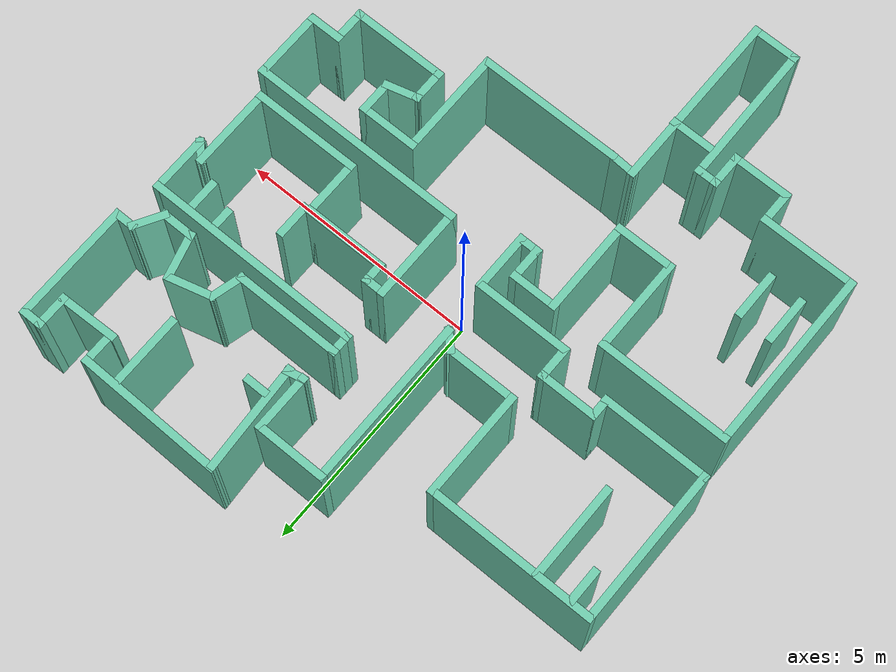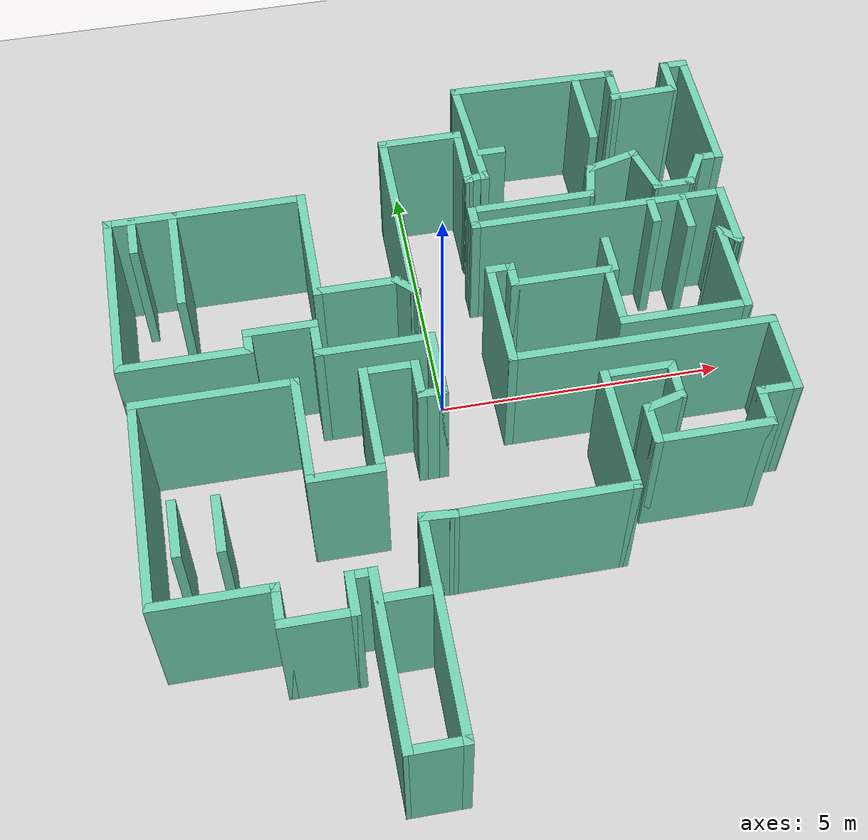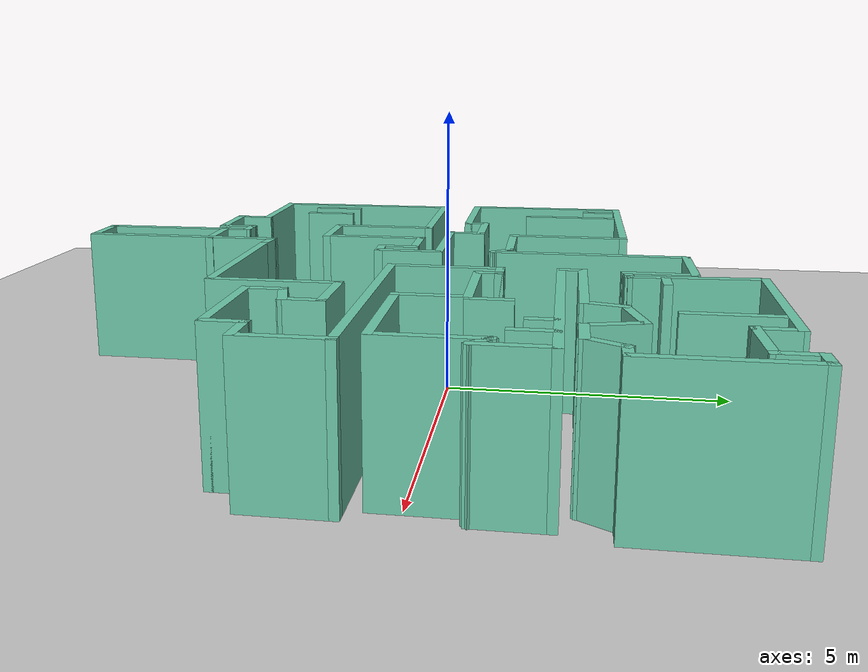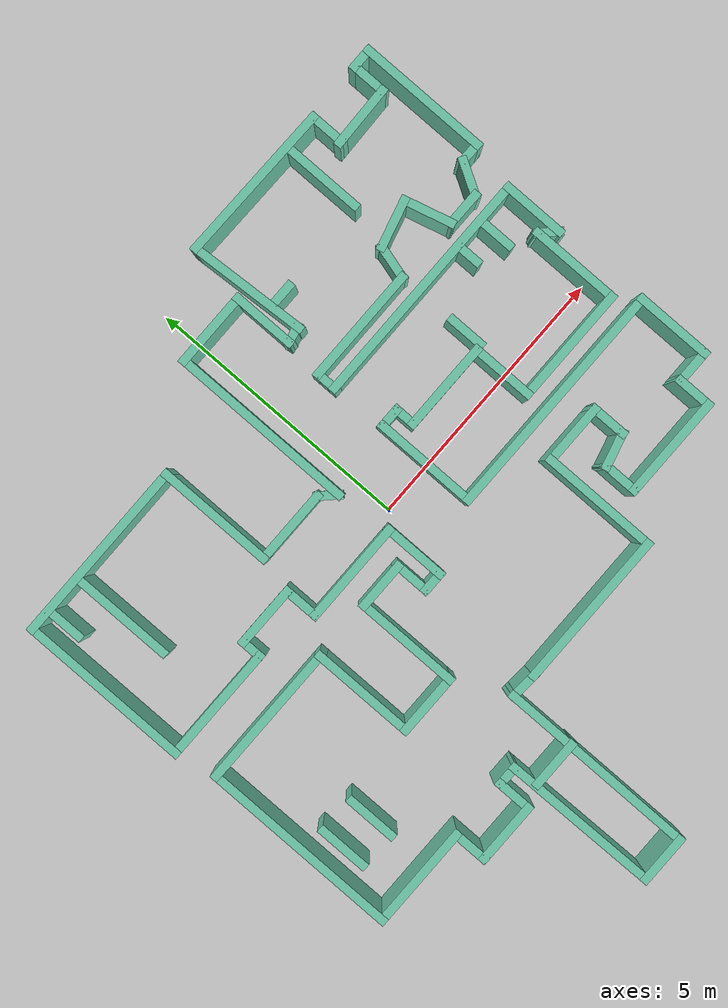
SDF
<sdf version="1.6">
 <world name="default">
  <light name="sun" type="directional">
   <pose>0 0 10 0 -0 0</pose>
   <diffuse>0.8 0.8 0.8 1</diffuse>
   <specular>0.2 0.2 0.2 1</specular>
   <attenuation>
    <range>1000</range>
    <constant>0.9</constant>
    <linear>0.01</linear>
    <quadratic>0.001</quadratic>
   </attenuation>
   <direction>-0.5 0.1 -0.9</direction>
  </light>
  <model name="ground_plane">
   <static>1</static>
   <link name="link">
    <collision name="collision">
     <geometry><plane><normal>0 0 1</normal><size>100 100</size></plane></geometry>
     <surface>
      <contact><collide_bitmask>65535</collide_bitmask></contact>
      <friction><ode><mu>100</mu><mu2>50</mu2></ode></friction>
     </surface>
    </collision>
    <visual name="visual">
     <cast_shadows>0</cast_shadows>
     <geometry><plane><normal>0 0 1</normal><size>100 100</size></plane></geometry>
     <material>
      <script><uri>file://media/materials/scripts/gazebo.material</uri><name>Gazebo/Grey</name></script>
     </material>
    </visual>
   </link>
  </model>
  <gravity>0 0 -9.8</gravity>
  <magnetic_field>6e-06 2.3e-05 -4.2e-05</magnetic_field>
  <atmosphere type="adiabatic"/>
  <physics name="default_physics" default="0" type="ode">
   <max_step_size>0.001</max_step_size>
   <real_time_factor>1</real_time_factor>
   <real_time_update_rate>1000</real_time_update_rate>
  </physics>
  <scene><ambient>0.4 0.4 0.4 1</ambient><background>0.7 0.7 0.7 1</background><shadows>1</shadows></scene>
  <audio><device>default</device></audio>
  <spherical_coordinates>
   <surface_model>EARTH_WGS84</surface_model>
   <latitude_deg>0</latitude_deg>
   <longitude_deg>0</longitude_deg>
   <elevation>0</elevation>
   <heading_deg>0</heading_deg>
  </spherical_coordinates>
  <model name="map_24">
   <pose>0.098786 -0.951485 0 0 -0 0</pose>
   <link name="Wall_10">
    <collision name="Wall_10_Collision">
     <geometry><box><size>2.25 0.15 2.5</size></box></geometry>
     <pose>0 0 1.25 0 -0 0</pose>
    </collision>
    <visual name="Wall_10_Visual">
     <pose>0 0 1.25 0 -0 0</pose>
     <geometry><box><size>2.25 0.15 2.5</size></box></geometry>
     <material>
      <script><uri>file://media/materials/scripts/gazebo.material</uri><name>Gazebo/Grey</name></script>
      <ambient>0.435294 0.796078 0.67451 1</ambient>
     </material>
     <meta><layer>0</layer></meta>
    </visual>
    <pose>-2.03213 3.05263 0 0 -0 1.5708</pose>
   </link>
   <link name="Wall_101">
    <collision name="Wall_101_Collision">
     <geometry><box><size>1 0.15 2.5</size></box></geometry>
     <pose>0 0 1.25 0 -0 0</pose>
    </collision>
    <visual name="Wall_101_Visual">
     <pose>0 0 1.25 0 -0 0</pose>
     <geometry><box><size>1 0.15 2.5</size></box></geometry>
     <material>
      <script><uri>file://media/materials/scripts/gazebo.material</uri><name>Gazebo/Grey</name></script>
      <ambient>0.435294 0.796078 0.67451 1</ambient>
     </material>
     <meta><layer>0</layer></meta>
    </visual>
    <pose>-4.0881 -2.12036 0 0 -0 -1.5708</pose>
   </link>
   <link name="Wall_104">
    <collision name="Wall_104_Collision">
     <geometry><box><size>1 0.15 2.5</size></box></geometry>
     <pose>0 0 1.25 0 -0 0</pose>
    </collision>
    <visual name="Wall_104_Visual">
     <pose>0 0 1.25 0 -0 0</pose>
     <geometry><box><size>1 0.15 2.5</size></box></geometry>
     <material>
      <script><uri>file://media/materials/scripts/gazebo.material</uri><name>Gazebo/Grey</name></script>
      <ambient>0.435294 0.796078 0.67451 1</ambient>
     </material>
     <meta><layer>0</layer></meta>
    </visual>
    <pose>-1.4606 -3.80609 0 0 -0 0</pose>
   </link>
   <link name="Wall_106">
    <collision name="Wall_106_Collision">
     <geometry><box><size>1 0.15 2.5</size></box></geometry>
     <pose>0 0 1.25 0 -0 0</pose>
    </collision>
    <visual name="Wall_106_Visual">
     <pose>0 0 1.25 0 -0 0</pose>
     <geometry><box><size>1 0.15 2.5</size></box></geometry>
     <material>
      <script><uri>file://media/materials/scripts/gazebo.material</uri><name>Gazebo/Grey</name></script>
      <ambient>0.435294 0.796078 0.67451 1</ambient>
     </material>
     <meta><layer>0</layer></meta>
    </visual>
    <pose>-1.47654 -6.16678 0 0 -0 0</pose>
   </link>
   <link name="Wall_107">
    <collision name="Wall_107_Collision">
     <geometry><box><size>3.75 0.15 2.5</size></box></geometry>
     <pose>0 0 1.25 0 -0 0</pose>
    </collision>
    <visual name="Wall_107_Visual">
     <pose>0 0 1.25 0 -0 0</pose>
     <geometry><box><size>3.75 0.15 2.5</size></box></geometry>
     <material>
      <script><uri>file://media/materials/scripts/gazebo.material</uri><name>Gazebo/Grey</name></script>
      <ambient>0.435294 0.796078 0.67451 1</ambient>
     </material>
     <meta><layer>0</layer></meta>
    </visual>
    <pose>-1.05154 -4.36678 0 0 -0 1.5708</pose>
   </link>
   <link name="Wall_108">
    <collision name="Wall_108_Collision">
     <geometry><box><size>0.620405 0.15 2.5</size></box></geometry>
     <pose>0 0 1.25 0 -0 0</pose>
    </collision>
    <visual name="Wall_108_Visual">
     <pose>0 0 1.25 0 -0 0</pose>
     <geometry><box><size>0.620405 0.15 2.5</size></box></geometry>
     <material>
      <script><uri>file://media/materials/scripts/gazebo.material</uri><name>Gazebo/Grey</name></script>
      <ambient>0.435294 0.796078 0.67451 1</ambient>
     </material>
     <meta><layer>0</layer></meta>
    </visual>
    <pose>-0.816833 -2.58207 0 0 -0 -0.065075</pose>
   </link>
   <link name="Wall_11">
    <collision name="Wall_11_Collision">
     <geometry><box><size>3.5 0.15 2.5</size></box></geometry>
     <pose>0 0 1.25 0 -0 0</pose>
    </collision>
    <visual name="Wall_11_Visual">
     <pose>0 0 1.25 0 -0 0</pose>
     <geometry><box><size>3.5 0.15 2.5</size></box></geometry>
     <material>
      <script><uri>file://media/materials/scripts/gazebo.material</uri><name>Gazebo/Grey</name></script>
      <ambient>0.435294 0.796078 0.67451 1</ambient>
     </material>
     <meta><layer>0</layer></meta>
    </visual>
    <pose>-3.70713 4.10263 0 0 -0 3.14159</pose>
   </link>
   <link name="Wall_12">
    <collision name="Wall_12_Collision">
     <geometry><box><size>3.25 0.15 2.5</size></box></geometry>
     <pose>0 0 1.25 0 -0 0</pose>
    </collision>
    <visual name="Wall_12_Visual">
     <pose>0 0 1.25 0 -0 0</pose>
     <geometry><box><size>3.25 0.15 2.5</size></box></geometry>
     <material>
      <script><uri>file://media/materials/scripts/gazebo.material</uri><name>Gazebo/Grey</name></script>
      <ambient>0.435294 0.796078 0.67451 1</ambient>
     </material>
     <meta><layer>0</layer></meta>
    </visual>
    <pose>-5.38213 2.55263 0 0 -0 -1.5708</pose>
   </link>
   <link name="Wall_13">
    <collision name="Wall_13_Collision">
     <geometry><box><size>2.25 0.15 2.5</size></box></geometry>
     <pose>0 0 1.25 0 -0 0</pose>
    </collision>
    <visual name="Wall_13_Visual">
     <pose>0 0 1.25 0 -0 0</pose>
     <geometry><box><size>2.25 0.15 2.5</size></box></geometry>
     <material>
      <script><uri>file://media/materials/scripts/gazebo.material</uri><name>Gazebo/Grey</name></script>
      <ambient>0.435294 0.796078 0.67451 1</ambient>
     </material>
     <meta><layer>0</layer></meta>
    </visual>
    <pose>-4.33213 1.00263 0 0 -0 0</pose>
   </link>
   <link name="Wall_14">
    <collision name="Wall_14_Collision">
     <geometry><box><size>0.5 0.15 2.5</size></box></geometry>
     <pose>0 0 1.25 0 -0 0</pose>
    </collision>
    <visual name="Wall_14_Visual">
     <pose>0 0 1.25 0 -0 0</pose>
     <geometry><box><size>0.5 0.15 2.5</size></box></geometry>
     <material>
      <script><uri>file://media/materials/scripts/gazebo.material</uri><name>Gazebo/Grey</name></script>
      <ambient>0.435294 0.796078 0.67451 1</ambient>
     </material>
     <meta><layer>0</layer></meta>
    </visual>
    <pose>-3.28213 1.17763 0 0 -0 1.5708</pose>
   </link>
   <link name="Wall_15">
    <collision name="Wall_15_Collision">
     <geometry><box><size>1.25 0.15 2.5</size></box></geometry>
     <pose>0 0 1.25 0 -0 0</pose>
    </collision>
    <visual name="Wall_15_Visual">
     <pose>0 0 1.25 0 -0 0</pose>
     <geometry><box><size>1.25 0.15 2.5</size></box></geometry>
     <material>
      <script><uri>file://media/materials/scripts/gazebo.material</uri><name>Gazebo/Grey</name></script>
      <ambient>0.435294 0.796078 0.67451 1</ambient>
     </material>
     <meta><layer>0</layer></meta>
    </visual>
    <pose>-2.73213 1.35263 0 0 -0 0</pose>
   </link>
   <link name="Wall_18">
    <collision name="Wall_18_Collision">
     <geometry><box><size>0.75 0.15 2.5</size></box></geometry>
     <pose>0 0 1.25 0 -0 0</pose>
    </collision>
    <visual name="Wall_18_Visual">
     <pose>0 0 1.25 0 -0 0</pose>
     <geometry><box><size>0.75 0.15 2.5</size></box></geometry>
     <material>
      <script><uri>file://media/materials/scripts/gazebo.material</uri><name>Gazebo/Grey</name></script>
      <ambient>0.435294 0.796078 0.67451 1</ambient>
     </material>
     <meta><layer>0</layer></meta>
    </visual>
    <pose>-2.18213 1.05263 0 0 -0 -1.5708</pose>
   </link>
   <link name="Wall_19">
    <collision name="Wall_19_Collision">
     <geometry><box><size>2 0.15 2.5</size></box></geometry>
     <pose>0 0 1.25 0 -0 0</pose>
    </collision>
    <visual name="Wall_19_Visual">
     <pose>0 0 1.25 0 -0 0</pose>
     <geometry><box><size>2 0.15 2.5</size></box></geometry>
     <material>
      <script><uri>file://media/materials/scripts/gazebo.material</uri><name>Gazebo/Grey</name></script>
      <ambient>0.435294 0.796078 0.67451 1</ambient>
     </material>
     <meta><layer>0</layer></meta>
    </visual>
    <pose>-1.25713 0.752632 0 0 -0 0</pose>
   </link>
   <link name="Wall_2">
    <collision name="Wall_2_Collision">
     <geometry><box><size>3.03132 0.15 2.5</size></box></geometry>
     <pose>0 0 1.25 0 -0 0</pose>
    </collision>
    <visual name="Wall_2_Visual">
     <pose>0 0 1.25 0 -0 0</pose>
     <geometry><box><size>3.03132 0.15 2.5</size></box></geometry>
     <material>
      <script><uri>file://media/materials/scripts/gazebo.material</uri><name>Gazebo/Grey</name></script>
      <ambient>0.435294 0.796078 0.67451 1</ambient>
     </material>
     <meta><layer>0</layer></meta>
    </visual>
    <pose>2.52227 6.14186 0 0 -0 3.12461</pose>
   </link>
   <link name="Wall_20">
    <collision name="Wall_20_Collision">
     <geometry><box><size>1.25 0.15 2.5</size></box></geometry>
     <pose>0 0 1.25 0 -0 0</pose>
    </collision>
    <visual name="Wall_20_Visual">
     <pose>0 0 1.25 0 -0 0</pose>
     <geometry><box><size>1.25 0.15 2.5</size></box></geometry>
     <material>
      <script><uri>file://media/materials/scripts/gazebo.material</uri><name>Gazebo/Grey</name></script>
      <ambient>0.435294 0.796078 0.67451 1</ambient>
     </material>
     <meta><layer>0</layer></meta>
    </visual>
    <pose>-0.332128 0.202632 0 0 -0 -1.5708</pose>
   </link>
   <link name="Wall_21">
    <collision name="Wall_21_Collision">
     <geometry><box><size>0.5 0.15 2.5</size></box></geometry>
     <pose>0 0 1.25 0 -0 0</pose>
    </collision>
    <visual name="Wall_21_Visual">
     <pose>0 0 1.25 0 -0 0</pose>
     <geometry><box><size>0.5 0.15 2.5</size></box></geometry>
     <material>
      <script><uri>file://media/materials/scripts/gazebo.material</uri><name>Gazebo/Grey</name></script>
      <ambient>0.435294 0.796078 0.67451 1</ambient>
     </material>
     <meta><layer>0</layer></meta>
    </visual>
    <pose>-0.507128 -0.347368 0 0 -0 3.14159</pose>
   </link>
   <link name="Wall_22">
    <collision name="Wall_22_Collision">
     <geometry><box><size>0.75 0.15 2.5</size></box></geometry>
     <pose>0 0 1.25 0 -0 0</pose>
    </collision>
    <visual name="Wall_22_Visual">
     <pose>0 0 1.25 0 -0 0</pose>
     <geometry><box><size>0.75 0.15 2.5</size></box></geometry>
     <material>
      <script><uri>file://media/materials/scripts/gazebo.material</uri><name>Gazebo/Grey</name></script>
      <ambient>0.435294 0.796078 0.67451 1</ambient>
     </material>
     <meta><layer>0</layer></meta>
    </visual>
    <pose>-0.682128 -0.047368 0 0 -0 1.5708</pose>
   </link>
   <link name="Wall_23">
    <collision name="Wall_23_Collision">
     <geometry><box><size>1 0.15 2.5</size></box></geometry>
     <pose>0 0 1.25 0 -0 0</pose>
    </collision>
    <visual name="Wall_23_Visual">
     <pose>0 0 1.25 0 -0 0</pose>
     <geometry><box><size>1 0.15 2.5</size></box></geometry>
     <material>
      <script><uri>file://media/materials/scripts/gazebo.material</uri><name>Gazebo/Grey</name></script>
      <ambient>0.435294 0.796078 0.67451 1</ambient>
     </material>
     <meta><layer>0</layer></meta>
    </visual>
    <pose>-1.10713 0.252632 0 0 -0 3.14159</pose>
   </link>
   <link name="Wall_24">
    <collision name="Wall_24_Collision">
     <geometry><box><size>2 0.15 2.5</size></box></geometry>
     <pose>0 0 1.25 0 -0 0</pose>
    </collision>
    <visual name="Wall_24_Visual">
     <pose>0 0 1.25 0 -0 0</pose>
     <geometry><box><size>2 0.15 2.5</size></box></geometry>
     <material>
      <script><uri>file://media/materials/scripts/gazebo.material</uri><name>Gazebo/Grey</name></script>
      <ambient>0.435294 0.796078 0.67451 1</ambient>
     </material>
     <meta><layer>0</layer></meta>
    </visual>
    <pose>-1.53213 -0.672368 0 0 -0 -1.5708</pose>
   </link>
   <link name="Wall_25">
    <collision name="Wall_25_Collision">
     <geometry><box><size>1.25 0.15 2.5</size></box></geometry>
     <pose>0 0 1.25 0 -0 0</pose>
    </collision>
    <visual name="Wall_25_Visual">
     <pose>0 0 1.25 0 -0 0</pose>
     <geometry><box><size>1.25 0.15 2.5</size></box></geometry>
     <material>
      <script><uri>file://media/materials/scripts/gazebo.material</uri><name>Gazebo/Grey</name></script>
      <ambient>0.435294 0.796078 0.67451 1</ambient>
     </material>
     <meta><layer>0</layer></meta>
    </visual>
    <pose>-2.08213 -1.59737 0 0 -0 3.14159</pose>
   </link>
   <link name="Wall_26">
    <collision name="Wall_26_Collision">
     <geometry><box><size>2 0.15 2.5</size></box></geometry>
     <pose>0 0 1.25 0 -0 0</pose>
    </collision>
    <visual name="Wall_26_Visual">
     <pose>0 0 1.25 0 -0 0</pose>
     <geometry><box><size>2 0.15 2.5</size></box></geometry>
     <material>
      <script><uri>file://media/materials/scripts/gazebo.material</uri><name>Gazebo/Grey</name></script>
      <ambient>0.435294 0.796078 0.67451 1</ambient>
     </material>
     <meta><layer>0</layer></meta>
    </visual>
    <pose>-2.63213 -0.672368 0 0 -0 1.5708</pose>
   </link>
   <link name="Wall_27">
    <collision name="Wall_27_Collision">
     <geometry><box><size>2.75 0.15 2.5</size></box></geometry>
     <pose>0 0 1.25 0 -0 0</pose>
    </collision>
    <visual name="Wall_27_Visual">
     <pose>0 0 1.25 0 -0 0</pose>
     <geometry><box><size>2.75 0.15 2.5</size></box></geometry>
     <material>
      <script><uri>file://media/materials/scripts/gazebo.material</uri><name>Gazebo/Grey</name></script>
      <ambient>0.435294 0.796078 0.67451 1</ambient>
     </material>
     <meta><layer>0</layer></meta>
    </visual>
    <pose>-3.93213 0.252632 0 0 -0 3.14159</pose>
   </link>
   <link name="Wall_28">
    <collision name="Wall_28_Collision">
     <geometry><box><size>3.75 0.15 2.5</size></box></geometry>
     <pose>0 0 1.25 0 -0 0</pose>
    </collision>
    <visual name="Wall_28_Visual">
     <pose>0 0 1.25 0 -0 0</pose>
     <geometry><box><size>3.75 0.15 2.5</size></box></geometry>
     <material>
      <script><uri>file://media/materials/scripts/gazebo.material</uri><name>Gazebo/Grey</name></script>
      <ambient>0.435294 0.796078 0.67451 1</ambient>
     </material>
     <meta><layer>0</layer></meta>
    </visual>
    <pose>-5.23213 -1.54737 0 0 -0 -1.5708</pose>
   </link>
   <link name="Wall_29">
    <collision name="Wall_29_Collision">
     <geometry><box><size>2 0.15 2.5</size></box></geometry>
     <pose>0 0 1.25 0 -0 0</pose>
    </collision>
    <visual name="Wall_29_Visual">
     <pose>0 0 1.25 0 -0 0</pose>
     <geometry><box><size>2 0.15 2.5</size></box></geometry>
     <material>
      <script><uri>file://media/materials/scripts/gazebo.material</uri><name>Gazebo/Grey</name></script>
      <ambient>0.435294 0.796078 0.67451 1</ambient>
     </material>
     <meta><layer>0</layer></meta>
    </visual>
    <pose>-4.30713 -3.34737 0 0 -0 0</pose>
   </link>
   <link name="Wall_3">
    <collision name="Wall_3_Collision">
     <geometry><box><size>2.25356 0.15 2.5</size></box></geometry>
     <pose>0 0 1.25 0 -0 0</pose>
    </collision>
    <visual name="Wall_3_Visual">
     <pose>0 0 1.25 0 -0 0</pose>
     <geometry><box><size>2.25356 0.15 2.5</size></box></geometry>
     <material>
      <script><uri>file://media/materials/scripts/gazebo.material</uri><name>Gazebo/Grey</name></script>
      <ambient>0.435294 0.796078 0.67451 1</ambient>
     </material>
     <meta><layer>0</layer></meta>
    </visual>
    <pose>1.143 5.08573 0 0 -0 -1.51259</pose>
   </link>
   <link name="Wall_30">
    <collision name="Wall_30_Collision">
     <geometry><box><size>0.75 0.15 2.5</size></box></geometry>
     <pose>0 0 1.25 0 -0 0</pose>
    </collision>
    <visual name="Wall_30_Visual">
     <pose>0 0 1.25 0 -0 0</pose>
     <geometry><box><size>0.75 0.15 2.5</size></box></geometry>
     <material>
      <script><uri>file://media/materials/scripts/gazebo.material</uri><name>Gazebo/Grey</name></script>
      <ambient>0.435294 0.796078 0.67451 1</ambient>
     </material>
     <meta><layer>0</layer></meta>
    </visual>
    <pose>-3.38213 -3.64737 0 0 -0 -1.5708</pose>
   </link>
   <link name="Wall_31">
    <collision name="Wall_31_Collision">
     <geometry><box><size>1.25 0.15 2.5</size></box></geometry>
     <pose>0 0 1.25 0 -0 0</pose>
    </collision>
    <visual name="Wall_31_Visual">
     <pose>0 0 1.25 0 -0 0</pose>
     <geometry><box><size>1.25 0.15 2.5</size></box></geometry>
     <material>
      <script><uri>file://media/materials/scripts/gazebo.material</uri><name>Gazebo/Grey</name></script>
      <ambient>0.435294 0.796078 0.67451 1</ambient>
     </material>
     <meta><layer>0</layer></meta>
    </visual>
    <pose>-2.83213 -3.94737 0 0 -0 0</pose>
   </link>
   <link name="Wall_32">
    <collision name="Wall_32_Collision">
     <geometry><box><size>0.75 0.15 2.5</size></box></geometry>
     <pose>0 0 1.25 0 -0 0</pose>
    </collision>
    <visual name="Wall_32_Visual">
     <pose>0 0 1.25 0 -0 0</pose>
     <geometry><box><size>0.75 0.15 2.5</size></box></geometry>
     <material>
      <script><uri>file://media/materials/scripts/gazebo.material</uri><name>Gazebo/Grey</name></script>
      <ambient>0.435294 0.796078 0.67451 1</ambient>
     </material>
     <meta><layer>0</layer></meta>
    </visual>
    <pose>-2.28213 -3.64737 0 0 -0 1.5708</pose>
   </link>
   <link name="Wall_33">
    <collision name="Wall_33_Collision">
     <geometry><box><size>0.5 0.15 2.5</size></box></geometry>
     <pose>0 0 1.25 0 -0 0</pose>
    </collision>
    <visual name="Wall_33_Visual">
     <pose>0 0 1.25 0 -0 0</pose>
     <geometry><box><size>0.5 0.15 2.5</size></box></geometry>
     <material>
      <script><uri>file://media/materials/scripts/gazebo.material</uri><name>Gazebo/Grey</name></script>
      <ambient>0.435294 0.796078 0.67451 1</ambient>
     </material>
     <meta><layer>0</layer></meta>
    </visual>
    <pose>-2.10713 -3.34737 0 0 -0 0</pose>
   </link>
   <link name="Wall_36">
    <collision name="Wall_36_Collision">
     <geometry><box><size>2.96958 0.15 2.5</size></box></geometry>
     <pose>0 0 1.25 0 -0 0</pose>
    </collision>
    <visual name="Wall_36_Visual">
     <pose>0 0 1.25 0 -0 0</pose>
     <geometry><box><size>2.96958 0.15 2.5</size></box></geometry>
     <material>
      <script><uri>file://media/materials/scripts/gazebo.material</uri><name>Gazebo/Grey</name></script>
      <ambient>0.435294 0.796078 0.67451 1</ambient>
     </material>
     <meta><layer>0</layer></meta>
    </visual>
    <pose>-1.91683 -4.75707 0 0 -0 -1.55995</pose>
   </link>
   <link name="Wall_39">
    <collision name="Wall_39_Collision">
     <geometry><box><size>3 0.15 2.5</size></box></geometry>
     <pose>0 0 1.25 0 -0 0</pose>
    </collision>
    <visual name="Wall_39_Visual">
     <pose>0 0 1.25 0 -0 0</pose>
     <geometry><box><size>3 0.15 2.5</size></box></geometry>
     <material>
      <script><uri>file://media/materials/scripts/gazebo.material</uri><name>Gazebo/Grey</name></script>
      <ambient>0.435294 0.796078 0.67451 1</ambient>
     </material>
     <meta><layer>0</layer></meta>
    </visual>
    <pose>0.842872 -2.59737 0 0 -0 0</pose>
   </link>
   <link name="Wall_4">
    <collision name="Wall_4_Collision">
     <geometry><box><size>0.445228 0.15 2.5</size></box></geometry>
     <pose>0 0 1.25 0 -0 0</pose>
    </collision>
    <visual name="Wall_4_Visual">
     <pose>0 0 1.25 0 -0 0</pose>
     <geometry><box><size>0.445228 0.15 2.5</size></box></geometry>
     <material>
      <script><uri>file://media/materials/scripts/gazebo.material</uri><name>Gazebo/Grey</name></script>
      <ambient>0.435294 0.796078 0.67451 1</ambient>
     </material>
     <meta><layer>0</layer></meta>
    </visual>
    <pose>1.05977 4.03573 0 0 -0 -2.93285</pose>
   </link>
   <link name="Wall_40">
    <collision name="Wall_40_Collision">
     <geometry><box><size>2.25 0.15 2.5</size></box></geometry>
     <pose>0 0 1.25 0 -0 0</pose>
    </collision>
    <visual name="Wall_40_Visual">
     <pose>0 0 1.25 0 -0 0</pose>
     <geometry><box><size>2.25 0.15 2.5</size></box></geometry>
     <material>
      <script><uri>file://media/materials/scripts/gazebo.material</uri><name>Gazebo/Grey</name></script>
      <ambient>0.435294 0.796078 0.67451 1</ambient>
     </material>
     <meta><layer>0</layer></meta>
    </visual>
    <pose>2.26787 -1.54737 0 0 -0 1.5708</pose>
   </link>
   <link name="Wall_41">
    <collision name="Wall_41_Collision">
     <geometry><box><size>1.25 0.15 2.5</size></box></geometry>
     <pose>0 0 1.25 0 -0 0</pose>
    </collision>
    <visual name="Wall_41_Visual">
     <pose>0 0 1.25 0 -0 0</pose>
     <geometry><box><size>1.25 0.15 2.5</size></box></geometry>
     <material>
      <script><uri>file://media/materials/scripts/gazebo.material</uri><name>Gazebo/Grey</name></script>
      <ambient>0.435294 0.796078 0.67451 1</ambient>
     </material>
     <meta><layer>0</layer></meta>
    </visual>
    <pose>2.81787 -0.497368 0 0 -0 0</pose>
   </link>
   <link name="Wall_42">
    <collision name="Wall_42_Collision">
     <geometry><box><size>0.75 0.15 2.5</size></box></geometry>
     <pose>0 0 1.25 0 -0 0</pose>
    </collision>
    <visual name="Wall_42_Visual">
     <pose>0 0 1.25 0 -0 0</pose>
     <geometry><box><size>0.75 0.15 2.5</size></box></geometry>
     <material>
      <script><uri>file://media/materials/scripts/gazebo.material</uri><name>Gazebo/Grey</name></script>
      <ambient>0.435294 0.796078 0.67451 1</ambient>
     </material>
     <meta><layer>0</layer></meta>
    </visual>
    <pose>3.36787 -0.797368 0 0 -0 -1.5708</pose>
   </link>
   <link name="Wall_43">
    <collision name="Wall_43_Collision">
     <geometry><box><size>0.75 0.15 2.5</size></box></geometry>
     <pose>0 0 1.25 0 -0 0</pose>
    </collision>
    <visual name="Wall_43_Visual">
     <pose>0 0 1.25 0 -0 0</pose>
     <geometry><box><size>0.75 0.15 2.5</size></box></geometry>
     <material>
      <script><uri>file://media/materials/scripts/gazebo.material</uri><name>Gazebo/Grey</name></script>
      <ambient>0.435294 0.796078 0.67451 1</ambient>
     </material>
     <meta><layer>0</layer></meta>
    </visual>
    <pose>3.07809 -1.17501 0 0 -0 -2.87979</pose>
   </link>
   <link name="Wall_44">
    <collision name="Wall_44_Collision">
     <geometry><box><size>0.75 0.15 2.5</size></box></geometry>
     <pose>0 0 1.25 0 -0 0</pose>
    </collision>
    <visual name="Wall_44_Visual">
     <pose>0 0 1.25 0 -0 0</pose>
     <geometry><box><size>0.75 0.15 2.5</size></box></geometry>
     <material>
      <script><uri>file://media/materials/scripts/gazebo.material</uri><name>Gazebo/Grey</name></script>
      <ambient>0.435294 0.796078 0.67451 1</ambient>
     </material>
     <meta><layer>0</layer></meta>
    </visual>
    <pose>2.78832 -1.55266 0 0 -0 -1.5708</pose>
   </link>
   <link name="Wall_45">
    <collision name="Wall_45_Collision">
     <geometry><box><size>2 0.15 2.5</size></box></geometry>
     <pose>0 0 1.25 0 -0 0</pose>
    </collision>
    <visual name="Wall_45_Visual">
     <pose>0 0 1.25 0 -0 0</pose>
     <geometry><box><size>2 0.15 2.5</size></box></geometry>
     <material>
      <script><uri>file://media/materials/scripts/gazebo.material</uri><name>Gazebo/Grey</name></script>
      <ambient>0.435294 0.796078 0.67451 1</ambient>
     </material>
     <meta><layer>0</layer></meta>
    </visual>
    <pose>3.71332 -1.85266 0 0 -0 0</pose>
   </link>
   <link name="Wall_46">
    <collision name="Wall_46_Collision">
     <geometry><box><size>0.75 0.15 2.5</size></box></geometry>
     <pose>0 0 1.25 0 -0 0</pose>
    </collision>
    <visual name="Wall_46_Visual">
     <pose>0 0 1.25 0 -0 0</pose>
     <geometry><box><size>0.75 0.15 2.5</size></box></geometry>
     <material>
      <script><uri>file://media/materials/scripts/gazebo.material</uri><name>Gazebo/Grey</name></script>
      <ambient>0.435294 0.796078 0.67451 1</ambient>
     </material>
     <meta><layer>0</layer></meta>
    </visual>
    <pose>4.63832 -1.55266 0 0 -0 1.5708</pose>
   </link>
   <link name="Wall_47">
    <collision name="Wall_47_Collision">
     <geometry><box><size>0.75 0.15 2.5</size></box></geometry>
     <pose>0 0 1.25 0 -0 0</pose>
    </collision>
    <visual name="Wall_47_Visual">
     <pose>0 0 1.25 0 -0 0</pose>
     <geometry><box><size>0.75 0.15 2.5</size></box></geometry>
     <material>
      <script><uri>file://media/materials/scripts/gazebo.material</uri><name>Gazebo/Grey</name></script>
      <ambient>0.435294 0.796078 0.67451 1</ambient>
     </material>
     <meta><layer>0</layer></meta>
    </visual>
    <pose>4.93832 -1.25266 0 0 -0 0</pose>
   </link>
   <link name="Wall_48">
    <collision name="Wall_48_Collision">
     <geometry><box><size>1.5 0.15 2.5</size></box></geometry>
     <pose>0 0 1.25 0 -0 0</pose>
    </collision>
    <visual name="Wall_48_Visual">
     <pose>0 0 1.25 0 -0 0</pose>
     <geometry><box><size>1.5 0.15 2.5</size></box></geometry>
     <material>
      <script><uri>file://media/materials/scripts/gazebo.material</uri><name>Gazebo/Grey</name></script>
      <ambient>0.435294 0.796078 0.67451 1</ambient>
     </material>
     <meta><layer>0</layer></meta>
    </visual>
    <pose>5.23832 -0.57766 0 0 -0 1.5708</pose>
   </link>
   <link name="Wall_49">
    <collision name="Wall_49_Collision">
     <geometry><box><size>4.5 0.15 2.5</size></box></geometry>
     <pose>0 0 1.25 0 -0 0</pose>
    </collision>
    <visual name="Wall_49_Visual">
     <pose>0 0 1.25 0 -0 0</pose>
     <geometry><box><size>4.5 0.15 2.5</size></box></geometry>
     <material>
      <script><uri>file://media/materials/scripts/gazebo.material</uri><name>Gazebo/Grey</name></script>
      <ambient>0.435294 0.796078 0.67451 1</ambient>
     </material>
     <meta><layer>0</layer></meta>
    </visual>
    <pose>3.06332 0.09734 0 0 -0 3.14159</pose>
   </link>
   <link name="Wall_5">
    <collision name="Wall_5_Collision">
     <geometry><box><size>1.25 0.15 2.5</size></box></geometry>
     <pose>0 0 1.25 0 -0 0</pose>
    </collision>
    <visual name="Wall_5_Visual">
     <pose>0 0 1.25 0 -0 0</pose>
     <geometry><box><size>1.25 0.15 2.5</size></box></geometry>
     <material>
      <script><uri>file://media/materials/scripts/gazebo.material</uri><name>Gazebo/Grey</name></script>
      <ambient>0.435294 0.796078 0.67451 1</ambient>
     </material>
     <meta><layer>0</layer></meta>
    </visual>
    <pose>0.915359 4.55514 0 0 -0 1.5708</pose>
   </link>
   <link name="Wall_50">
    <collision name="Wall_50_Collision">
     <geometry><box><size>2 0.15 2.5</size></box></geometry>
     <pose>0 0 1.25 0 -0 0</pose>
    </collision>
    <visual name="Wall_50_Visual">
     <pose>0 0 1.25 0 -0 0</pose>
     <geometry><box><size>2 0.15 2.5</size></box></geometry>
     <material>
      <script><uri>file://media/materials/scripts/gazebo.material</uri><name>Gazebo/Grey</name></script>
      <ambient>0.435294 0.796078 0.67451 1</ambient>
     </material>
     <meta><layer>0</layer></meta>
    </visual>
    <pose>0.888316 1.02234 0 0 -0 1.5708</pose>
   </link>
   <link name="Wall_51">
    <collision name="Wall_51_Collision">
     <geometry><box><size>0.5 0.15 2.5</size></box></geometry>
     <pose>0 0 1.25 0 -0 0</pose>
    </collision>
    <visual name="Wall_51_Visual">
     <pose>0 0 1.25 0 -0 0</pose>
     <geometry><box><size>0.5 0.15 2.5</size></box></geometry>
     <material>
      <script><uri>file://media/materials/scripts/gazebo.material</uri><name>Gazebo/Grey</name></script>
      <ambient>0.435294 0.796078 0.67451 1</ambient>
     </material>
     <meta><layer>0</layer></meta>
    </visual>
    <pose>1.06332 1.94734 0 0 -0 0</pose>
   </link>
   <link name="Wall_52">
    <collision name="Wall_52_Collision">
     <geometry><box><size>0.5 0.15 2.5</size></box></geometry>
     <pose>0 0 1.25 0 -0 0</pose>
    </collision>
    <visual name="Wall_52_Visual">
     <pose>0 0 1.25 0 -0 0</pose>
     <geometry><box><size>0.5 0.15 2.5</size></box></geometry>
     <material>
      <script><uri>file://media/materials/scripts/gazebo.material</uri><name>Gazebo/Grey</name></script>
      <ambient>0.435294 0.796078 0.67451 1</ambient>
     </material>
     <meta><layer>0</layer></meta>
    </visual>
    <pose>1.23832 1.77234 0 0 -0 -1.5708</pose>
   </link>
   <link name="Wall_53">
    <collision name="Wall_53_Collision">
     <geometry><box><size>1.75 0.15 2.5</size></box></geometry>
     <pose>0 0 1.25 0 -0 0</pose>
    </collision>
    <visual name="Wall_53_Visual">
     <pose>0 0 1.25 0 -0 0</pose>
     <geometry><box><size>1.75 0.15 2.5</size></box></geometry>
     <material>
      <script><uri>file://media/materials/scripts/gazebo.material</uri><name>Gazebo/Grey</name></script>
      <ambient>0.435294 0.796078 0.67451 1</ambient>
     </material>
     <meta><layer>0</layer></meta>
    </visual>
    <pose>2.03832 1.59734 0 0 -0 0</pose>
   </link>
   <link name="Wall_54">
    <collision name="Wall_54_Collision">
     <geometry><box><size>1.25 0.15 2.5</size></box></geometry>
     <pose>0 0 1.25 0 -0 0</pose>
    </collision>
    <visual name="Wall_54_Visual">
     <pose>0 0 1.25 0 -0 0</pose>
     <geometry><box><size>1.25 0.15 2.5</size></box></geometry>
     <material>
      <script><uri>file://media/materials/scripts/gazebo.material</uri><name>Gazebo/Grey</name></script>
      <ambient>0.435294 0.796078 0.67451 1</ambient>
     </material>
     <meta><layer>0</layer></meta>
    </visual>
    <pose>2.83832 1.04734 0 0 -0 -1.5708</pose>
   </link>
   <link name="Wall_6">
    <collision name="Wall_6_Collision">
     <geometry><box><size>1.5 0.15 2.5</size></box></geometry>
     <pose>0 0 1.25 0 -0 0</pose>
    </collision>
    <visual name="Wall_6_Visual">
     <pose>0 0 1.25 0 -0 0</pose>
     <geometry><box><size>1.5 0.15 2.5</size></box></geometry>
     <material>
      <script><uri>file://media/materials/scripts/gazebo.material</uri><name>Gazebo/Grey</name></script>
      <ambient>0.435294 0.796078 0.67451 1</ambient>
     </material>
     <meta><layer>0</layer></meta>
    </visual>
    <pose>0.240359 5.10515 0 0 -0 3.14159</pose>
   </link>
   <link name="Wall_62">
    <collision name="Wall_62_Collision">
     <geometry><box><size>2.25 0.15 2.5</size></box></geometry>
     <pose>0 0 1.25 0 -0 0</pose>
    </collision>
    <visual name="Wall_62_Visual">
     <pose>0 0 1.25 0 -0 0</pose>
     <geometry><box><size>2.25 0.15 2.5</size></box></geometry>
     <material>
      <script><uri>file://media/materials/scripts/gazebo.material</uri><name>Gazebo/Grey</name></script>
      <ambient>0.435294 0.796078 0.67451 1</ambient>
     </material>
     <meta><layer>0</layer></meta>
    </visual>
    <pose>3.88832 0.49734 0 0 -0 0</pose>
   </link>
   <link name="Wall_63">
    <collision name="Wall_63_Collision">
     <geometry><box><size>1.75 0.15 2.5</size></box></geometry>
     <pose>0 0 1.25 0 -0 0</pose>
    </collision>
    <visual name="Wall_63_Visual">
     <pose>0 0 1.25 0 -0 0</pose>
     <geometry><box><size>1.75 0.15 2.5</size></box></geometry>
     <material>
      <script><uri>file://media/materials/scripts/gazebo.material</uri><name>Gazebo/Grey</name></script>
      <ambient>0.435294 0.796078 0.67451 1</ambient>
     </material>
     <meta><layer>0</layer></meta>
    </visual>
    <pose>4.93832 1.29734 0 0 -0 1.5708</pose>
   </link>
   <link name="Wall_64">
    <collision name="Wall_64_Collision">
     <geometry><box><size>0.5 0.15 2.5</size></box></geometry>
     <pose>0 0 1.25 0 -0 0</pose>
    </collision>
    <visual name="Wall_64_Visual">
     <pose>0 0 1.25 0 -0 0</pose>
     <geometry><box><size>0.5 0.15 2.5</size></box></geometry>
     <material>
      <script><uri>file://media/materials/scripts/gazebo.material</uri><name>Gazebo/Grey</name></script>
      <ambient>0.435294 0.796078 0.67451 1</ambient>
     </material>
     <meta><layer>0</layer></meta>
    </visual>
    <pose>5.06206 1.9736 0 0 -0 -0.785398</pose>
   </link>
   <link name="Wall_67">
    <collision name="Wall_67_Collision">
     <geometry><box><size>1.25 0.15 2.5</size></box></geometry>
     <pose>0 0 1.25 0 -0 0</pose>
    </collision>
    <visual name="Wall_67_Visual">
     <pose>0 0 1.25 0 -0 0</pose>
     <geometry><box><size>1.25 0.15 2.5</size></box></geometry>
     <material>
      <script><uri>file://media/materials/scripts/gazebo.material</uri><name>Gazebo/Grey</name></script>
      <ambient>0.435294 0.796078 0.67451 1</ambient>
     </material>
     <meta><layer>0</layer></meta>
    </visual>
    <pose>5.1858 2.39985 0 0 -0 1.5708</pose>
   </link>
   <link name="Wall_68">
    <collision name="Wall_68_Collision">
     <geometry><box><size>4.5 0.15 2.5</size></box></geometry>
     <pose>0 0 1.25 0 -0 0</pose>
    </collision>
    <visual name="Wall_68_Visual">
     <pose>0 0 1.25 0 -0 0</pose>
     <geometry><box><size>4.5 0.15 2.5</size></box></geometry>
     <material>
      <script><uri>file://media/materials/scripts/gazebo.material</uri><name>Gazebo/Grey</name></script>
      <ambient>0.435294 0.796078 0.67451 1</ambient>
     </material>
     <meta><layer>0</layer></meta>
    </visual>
    <pose>3.0108 2.94985 0 0 -0 3.14159</pose>
   </link>
   <link name="Wall_69">
    <collision name="Wall_69_Collision">
     <geometry><box><size>0.5 0.15 2.5</size></box></geometry>
     <pose>0 0 1.25 0 -0 0</pose>
    </collision>
    <visual name="Wall_69_Visual">
     <pose>0 0 1.25 0 -0 0</pose>
     <geometry><box><size>0.5 0.15 2.5</size></box></geometry>
     <material>
      <script><uri>file://media/materials/scripts/gazebo.material</uri><name>Gazebo/Grey</name></script>
      <ambient>0.435294 0.796078 0.67451 1</ambient>
     </material>
     <meta><layer>0</layer></meta>
    </visual>
    <pose>0.835804 3.12485 0 0 -0 1.5708</pose>
   </link>
   <link name="Wall_7">
    <collision name="Wall_7_Collision">
     <geometry><box><size>3.5 0.15 2.5</size></box></geometry>
     <pose>0 0 1.25 0 -0 0</pose>
    </collision>
    <visual name="Wall_7_Visual">
     <pose>0 0 1.25 0 -0 0</pose>
     <geometry><box><size>3.5 0.15 2.5</size></box></geometry>
     <material>
      <script><uri>file://media/materials/scripts/gazebo.material</uri><name>Gazebo/Grey</name></script>
      <ambient>0.435294 0.796078 0.67451 1</ambient>
     </material>
     <meta><layer>0</layer></meta>
    </visual>
    <pose>-0.434641 3.43014 0 0 -0 -1.5708</pose>
   </link>
   <link name="Wall_70">
    <collision name="Wall_70_Collision">
     <geometry><box><size>2.25 0.15 2.5</size></box></geometry>
     <pose>0 0 1.25 0 -0 0</pose>
    </collision>
    <visual name="Wall_70_Visual">
     <pose>0 0 1.25 0 -0 0</pose>
     <geometry><box><size>2.25 0.15 2.5</size></box></geometry>
     <material>
      <script><uri>file://media/materials/scripts/gazebo.material</uri><name>Gazebo/Grey</name></script>
      <ambient>0.435294 0.796078 0.67451 1</ambient>
     </material>
     <meta><layer>0</layer></meta>
    </visual>
    <pose>1.8858 3.29985 0 0 -0 0</pose>
   </link>
   <link name="Wall_71">
    <collision name="Wall_71_Collision">
     <geometry><box><size>0.75 0.15 2.5</size></box></geometry>
     <pose>0 0 1.25 0 -0 0</pose>
    </collision>
    <visual name="Wall_71_Visual">
     <pose>0 0 1.25 0 -0 0</pose>
     <geometry><box><size>0.75 0.15 2.5</size></box></geometry>
     <material>
      <script><uri>file://media/materials/scripts/gazebo.material</uri><name>Gazebo/Grey</name></script>
      <ambient>0.435294 0.796078 0.67451 1</ambient>
     </material>
     <meta><layer>0</layer></meta>
    </visual>
    <pose>3.01345 3.58963 0 0 -0 1.309</pose>
   </link>
   <link name="Wall_72">
    <collision name="Wall_72_Collision">
     <geometry><box><size>1 0.15 2.5</size></box></geometry>
     <pose>0 0 1.25 0 -0 0</pose>
    </collision>
    <visual name="Wall_72_Visual">
     <pose>0 0 1.25 0 -0 0</pose>
     <geometry><box><size>1 0.15 2.5</size></box></geometry>
     <material>
      <script><uri>file://media/materials/scripts/gazebo.material</uri><name>Gazebo/Grey</name></script>
      <ambient>0.435294 0.796078 0.67451 1</ambient>
     </material>
     <meta><layer>0</layer></meta>
    </visual>
    <pose>3.50161 3.98941 0 0 -0 0.261799</pose>
   </link>
   <link name="Wall_73">
    <collision name="Wall_73_Collision">
     <geometry><box><size>1 0.15 2.5</size></box></geometry>
     <pose>0 0 1.25 0 -0 0</pose>
    </collision>
    <visual name="Wall_73_Visual">
     <pose>0 0 1.25 0 -0 0</pose>
     <geometry><box><size>1 0.15 2.5</size></box></geometry>
     <material>
      <script><uri>file://media/materials/scripts/gazebo.material</uri><name>Gazebo/Grey</name></script>
      <ambient>0.435294 0.796078 0.67451 1</ambient>
     </material>
     <meta><layer>0</layer></meta>
    </visual>
    <pose>4.02213 3.68889 0 0 -0 -1.309</pose>
   </link>
   <link name="Wall_74">
    <collision name="Wall_74_Collision">
     <geometry><box><size>0.75 0.15 2.5</size></box></geometry>
     <pose>0 0 1.25 0 -0 0</pose>
    </collision>
    <visual name="Wall_74_Visual">
     <pose>0 0 1.25 0 -0 0</pose>
     <geometry><box><size>0.75 0.15 2.5</size></box></geometry>
     <material>
      <script><uri>file://media/materials/scripts/gazebo.material</uri><name>Gazebo/Grey</name></script>
      <ambient>0.435294 0.796078 0.67451 1</ambient>
     </material>
     <meta><layer>0</layer></meta>
    </visual>
    <pose>4.43213 3.27837 0 0 -0 0</pose>
   </link>
   <link name="Wall_75">
    <collision name="Wall_75_Collision">
     <geometry><box><size>0.75 0.15 2.5</size></box></geometry>
     <pose>0 0 1.25 0 -0 0</pose>
    </collision>
    <visual name="Wall_75_Visual">
     <pose>0 0 1.25 0 -0 0</pose>
     <geometry><box><size>0.75 0.15 2.5</size></box></geometry>
     <material>
      <script><uri>file://media/materials/scripts/gazebo.material</uri><name>Gazebo/Grey</name></script>
      <ambient>0.435294 0.796078 0.67451 1</ambient>
     </material>
     <meta><layer>0</layer></meta>
    </visual>
    <pose>4.88213 3.53817 0 0 -0 1.0472</pose>
   </link>
   <link name="Wall_76">
    <collision name="Wall_76_Collision">
     <geometry><box><size>0.5 0.15 2.5</size></box></geometry>
     <pose>0 0 1.25 0 -0 0</pose>
    </collision>
    <visual name="Wall_76_Visual">
     <pose>0 0 1.25 0 -0 0</pose>
     <geometry><box><size>0.5 0.15 2.5</size></box></geometry>
     <material>
      <script><uri>file://media/materials/scripts/gazebo.material</uri><name>Gazebo/Grey</name></script>
      <ambient>0.435294 0.796078 0.67451 1</ambient>
     </material>
     <meta><layer>0</layer></meta>
    </visual>
    <pose>5.20713 3.79798 0 0 -0 0</pose>
   </link>
   <link name="Wall_77">
    <collision name="Wall_77_Collision">
     <geometry><box><size>2.5 0.15 2.5</size></box></geometry>
     <pose>0 0 1.25 0 -0 0</pose>
    </collision>
    <visual name="Wall_77_Visual">
     <pose>0 0 1.25 0 -0 0</pose>
     <geometry><box><size>2.5 0.15 2.5</size></box></geometry>
     <material>
      <script><uri>file://media/materials/scripts/gazebo.material</uri><name>Gazebo/Grey</name></script>
      <ambient>0.435294 0.796078 0.67451 1</ambient>
     </material>
     <meta><layer>0</layer></meta>
    </visual>
    <pose>5.38213 4.97298 0 0 -0 1.5708</pose>
   </link>
   <link name="Wall_78">
    <collision name="Wall_78_Collision">
     <geometry><box><size>0.5 0.15 2.5</size></box></geometry>
     <pose>0 0 1.25 0 -0 0</pose>
    </collision>
    <visual name="Wall_78_Visual">
     <pose>0 0 1.25 0 -0 0</pose>
     <geometry><box><size>0.5 0.15 2.5</size></box></geometry>
     <material>
      <script><uri>file://media/materials/scripts/gazebo.material</uri><name>Gazebo/Grey</name></script>
      <ambient>0.435294 0.796078 0.67451 1</ambient>
     </material>
     <meta><layer>0</layer></meta>
    </visual>
    <pose>5.20713 6.14798 0 0 -0 3.14159</pose>
   </link>
   <link name="Wall_79">
    <collision name="Wall_79_Collision">
     <geometry><box><size>0.75 0.15 2.5</size></box></geometry>
     <pose>0 0 1.25 0 -0 0</pose>
    </collision>
    <visual name="Wall_79_Visual">
     <pose>0 0 1.25 0 -0 0</pose>
     <geometry><box><size>0.75 0.15 2.5</size></box></geometry>
     <material>
      <script><uri>file://media/materials/scripts/gazebo.material</uri><name>Gazebo/Grey</name></script>
      <ambient>0.435294 0.796078 0.67451 1</ambient>
     </material>
     <meta><layer>0</layer></meta>
    </visual>
    <pose>5.03213 5.84798 0 0 -0 -1.5708</pose>
   </link>
   <link name="Wall_8">
    <collision name="Wall_8_Collision">
     <geometry><box><size>0.5 0.15 2.5</size></box></geometry>
     <pose>0 0 1.25 0 -0 0</pose>
    </collision>
    <visual name="Wall_8_Visual">
     <pose>0 0 1.25 0 -0 0</pose>
     <geometry><box><size>0.5 0.15 2.5</size></box></geometry>
     <material>
      <script><uri>file://media/materials/scripts/gazebo.material</uri><name>Gazebo/Grey</name></script>
      <ambient>0.435294 0.796078 0.67451 1</ambient>
     </material>
     <meta><layer>0</layer></meta>
    </visual>
    <pose>-0.558385 1.87889 0 0 -0 2.35619</pose>
   </link>
   <link name="Wall_80">
    <collision name="Wall_80_Collision">
     <geometry><box><size>1.25042 0.15 2.5</size></box></geometry>
     <pose>0 0 1.25 0 -0 0</pose>
    </collision>
    <visual name="Wall_80_Visual">
     <pose>0 0 1.25 0 -0 0</pose>
     <geometry><box><size>1.25042 0.15 2.5</size></box></geometry>
     <material>
      <script><uri>file://media/materials/scripts/gazebo.material</uri><name>Gazebo/Grey</name></script>
      <ambient>0.435294 0.796078 0.67451 1</ambient>
     </material>
     <meta><layer>0</layer></meta>
    </visual>
    <pose>4.48213 5.53269 0 0 -0 -3.11379</pose>
   </link>
   <link name="Wall_81">
    <collision name="Wall_81_Collision">
     <geometry><box><size>0.75 0.15 2.5</size></box></geometry>
     <pose>0 0 1.25 0 -0 0</pose>
    </collision>
    <visual name="Wall_81_Visual">
     <pose>0 0 1.25 0 -0 0</pose>
     <geometry><box><size>0.75 0.15 2.5</size></box></geometry>
     <material>
      <script><uri>file://media/materials/scripts/gazebo.material</uri><name>Gazebo/Grey</name></script>
      <ambient>0.435294 0.796078 0.67451 1</ambient>
     </material>
     <meta><layer>0</layer></meta>
    </visual>
    <pose>3.96272 5.81739 0 0 -0 1.5708</pose>
   </link>
   <link name="Wall_83">
    <collision name="Wall_83_Collision">
     <geometry><box><size>1.5 0.15 2.5</size></box></geometry>
     <pose>0 0 1.25 0 -0 0</pose>
    </collision>
    <visual name="Wall_83_Visual">
     <pose>0 0 1.25 0 -0 0</pose>
     <geometry><box><size>1.5 0.15 2.5</size></box></geometry>
     <material>
      <script><uri>file://media/materials/scripts/gazebo.material</uri><name>Gazebo/Grey</name></script>
      <ambient>0.435294 0.796078 0.67451 1</ambient>
     </material>
     <meta><layer>0</layer></meta>
    </visual>
    <pose>3.31474 5.33837 0 0 -0 -1.5708</pose>
   </link>
   <link name="Wall_85">
    <collision name="Wall_85_Collision">
     <geometry><box><size>0.5 0.15 2.5</size></box></geometry>
     <pose>0 0 1.25 0 -0 0</pose>
    </collision>
    <visual name="Wall_85_Visual">
     <pose>0 0 1.25 0 -0 0</pose>
     <geometry><box><size>0.5 0.15 2.5</size></box></geometry>
     <material>
      <script><uri>file://media/materials/scripts/gazebo.material</uri><name>Gazebo/Grey</name></script>
      <ambient>0.435294 0.796078 0.67451 1</ambient>
     </material>
     <meta><layer>0</layer></meta>
    </visual>
    <pose>1.44019 4.60622 0 0 -0 0</pose>
   </link>
   <link name="Wall_88">
    <collision name="Wall_88_Collision">
     <geometry><box><size>0.75 0.15 2.5</size></box></geometry>
     <pose>0 0 1.25 0 -0 0</pose>
    </collision>
    <visual name="Wall_88_Visual">
     <pose>0 0 1.25 0 -0 0</pose>
     <geometry><box><size>0.75 0.15 2.5</size></box></geometry>
     <material>
      <script><uri>file://media/materials/scripts/gazebo.material</uri><name>Gazebo/Grey</name></script>
      <ambient>0.435294 0.796078 0.67451 1</ambient>
     </material>
     <meta><layer>0</layer></meta>
    </visual>
    <pose>-4.97522 3.7556 0 0 -0 -1.5708</pose>
   </link>
   <link name="Wall_9">
    <collision name="Wall_9_Collision">
     <geometry><box><size>1.5 0.15 2.5</size></box></geometry>
     <pose>0 0 1.25 0 -0 0</pose>
    </collision>
    <visual name="Wall_9_Visual">
     <pose>0 0 1.25 0 -0 0</pose>
     <geometry><box><size>1.5 0.15 2.5</size></box></geometry>
     <material>
      <script><uri>file://media/materials/scripts/gazebo.material</uri><name>Gazebo/Grey</name></script>
      <ambient>0.435294 0.796078 0.67451 1</ambient>
     </material>
     <meta><layer>0</layer></meta>
    </visual>
    <pose>-1.35713 2.00263 0 0 -0 3.14159</pose>
   </link>
   <link name="Wall_90">
    <collision name="Wall_90_Collision">
     <geometry><box><size>2 0.15 2.5</size></box></geometry>
     <pose>0 0 1.25 0 -0 0</pose>
    </collision>
    <visual name="Wall_90_Visual">
     <pose>0 0 1.25 0 -0 0</pose>
     <geometry><box><size>2 0.15 2.5</size></box></geometry>
     <material>
      <script><uri>file://media/materials/scripts/gazebo.material</uri><name>Gazebo/Grey</name></script>
      <ambient>0.435294 0.796078 0.67451 1</ambient>
     </material>
     <meta><layer>0</layer></meta>
    </visual>
    <pose>-4.27164 3.16119 0 0 -0 -1.5708</pose>
   </link>
   <link name="Wall_93">
    <collision name="Wall_93_Collision">
     <geometry><box><size>0.75 0.15 2.5</size></box></geometry>
     <pose>0 0 1.25 0 -0 0</pose>
    </collision>
    <visual name="Wall_93_Visual">
     <pose>0 0 1.25 0 -0 0</pose>
     <geometry><box><size>0.75 0.15 2.5</size></box></geometry>
     <material>
      <script><uri>file://media/materials/scripts/gazebo.material</uri><name>Gazebo/Grey</name></script>
      <ambient>0.435294 0.796078 0.67451 1</ambient>
     </material>
     <meta><layer>0</layer></meta>
    </visual>
    <pose>2.94765 1.92019 0 0 -0 -1.5708</pose>
   </link>
   <link name="Wall_95">
    <collision name="Wall_95_Collision">
     <geometry><box><size>0.5 0.15 2.5</size></box></geometry>
     <pose>0 0 1.25 0 -0 0</pose>
    </collision>
    <visual name="Wall_95_Visual">
     <pose>0 0 1.25 0 -0 0</pose>
     <geometry><box><size>0.5 0.15 2.5</size></box></geometry>
     <material>
      <script><uri>file://media/materials/scripts/gazebo.material</uri><name>Gazebo/Grey</name></script>
      <ambient>0.435294 0.796078 0.67451 1</ambient>
     </material>
     <meta><layer>0</layer></meta>
    </visual>
    <pose>3.92654 2.71817 0 0 -0 -1.5708</pose>
   </link>
   <link name="Wall_97">
    <collision name="Wall_97_Collision">
     <geometry><box><size>0.75 0.15 2.5</size></box></geometry>
     <pose>0 0 1.25 0 -0 0</pose>
    </collision>
    <visual name="Wall_97_Visual">
     <pose>0 0 1.25 0 -0 0</pose>
     <geometry><box><size>0.75 0.15 2.5</size></box></geometry>
     <material>
      <script><uri>file://media/materials/scripts/gazebo.material</uri><name>Gazebo/Grey</name></script>
      <ambient>0.435294 0.796078 0.67451 1</ambient>
     </material>
     <meta><layer>0</layer></meta>
    </visual>
    <pose>4.47716 2.62376 0 0 -0 -1.5708</pose>
   </link>
   <link name="Wall_99">
    <collision name="Wall_99_Collision">
     <geometry><box><size>1 0.15 2.5</size></box></geometry>
     <pose>0 0 1.25 0 -0 0</pose>
    </collision>
    <visual name="Wall_99_Visual">
     <pose>0 0 1.25 0 -0 0</pose>
     <geometry><box><size>1 0.15 2.5</size></box></geometry>
     <material>
      <script><uri>file://media/materials/scripts/gazebo.material</uri><name>Gazebo/Grey</name></script>
      <ambient>0.435294 0.796078 0.67451 1</ambient>
     </material>
     <meta><layer>0</layer></meta>
    </visual>
    <pose>-4.76109 -2.08977 0 0 -0 -1.5708</pose>
   </link>
   <static>1</static>
  </model>
 </world>
</sdf>
